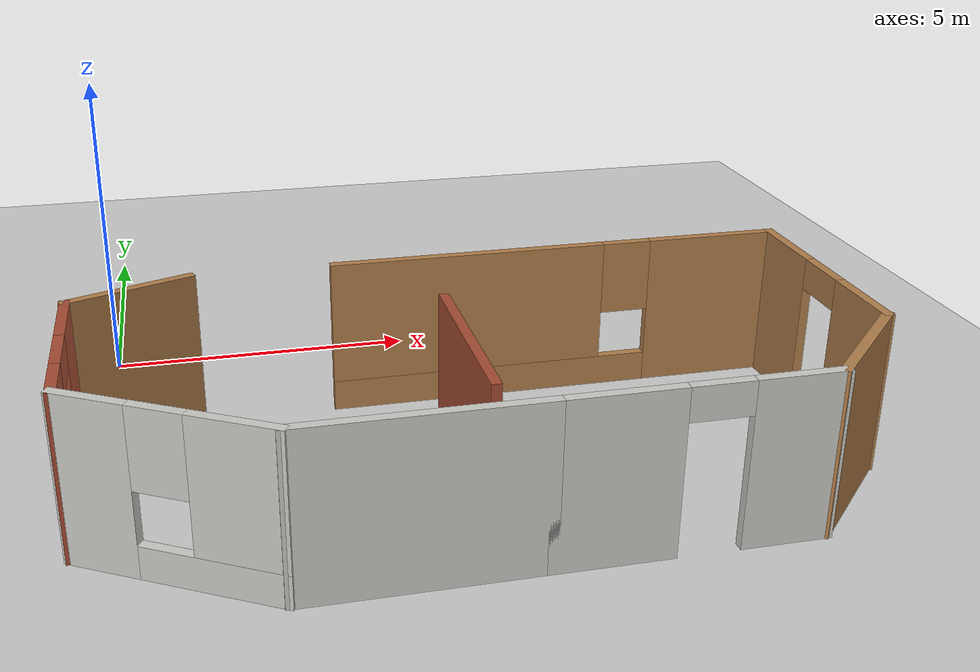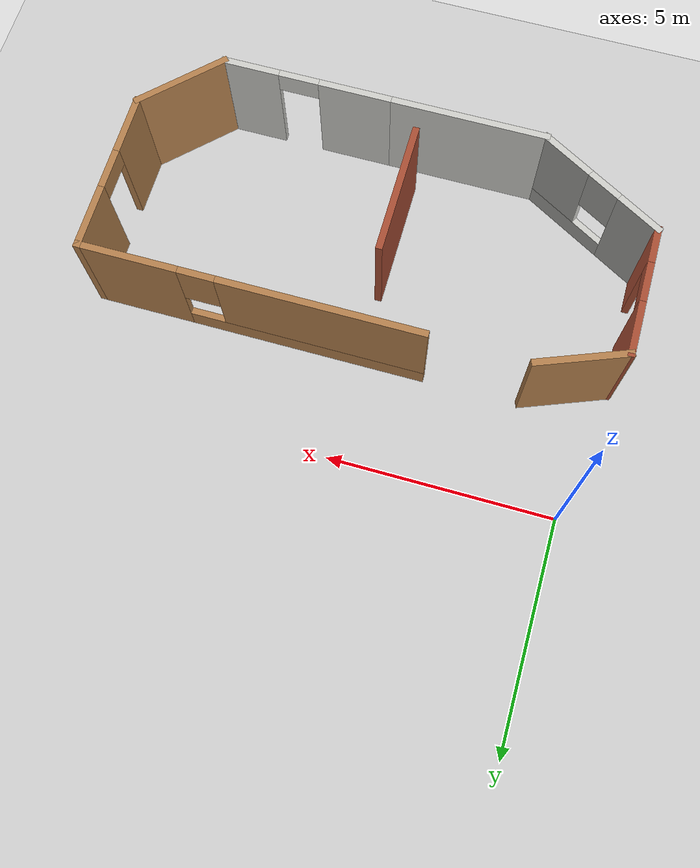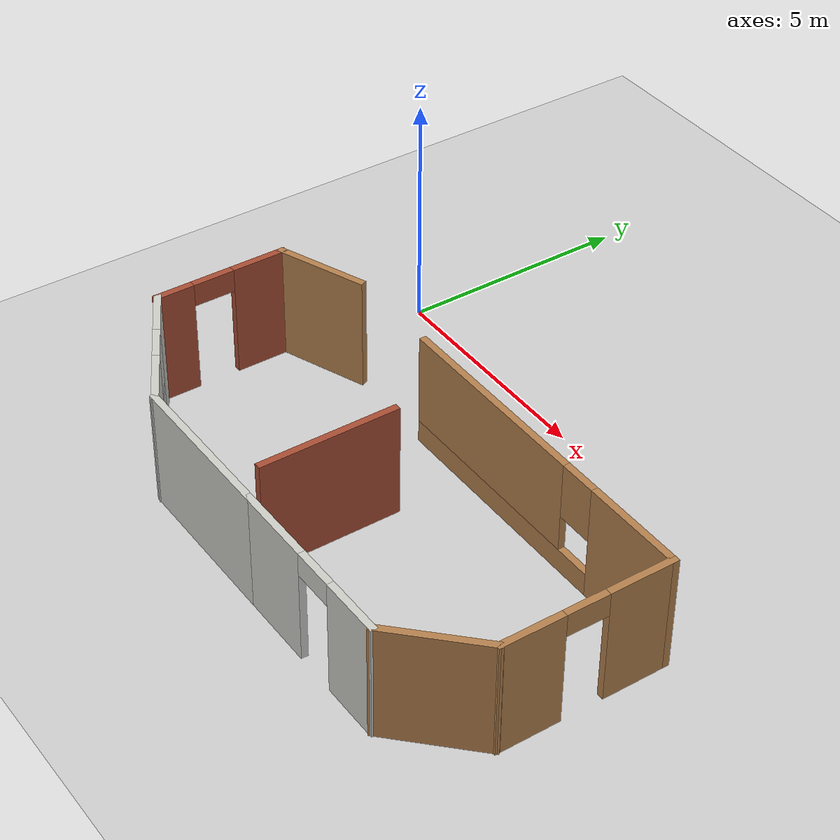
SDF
<sdf version="1.7">
 <world name="default">
  <light name="sun" type="directional">
   <pose>0 0 10 0 -0 0</pose>
   <diffuse>0.8 0.8 0.8 1</diffuse>
   <specular>0.2 0.2 0.2 1</specular>
   <attenuation>
    <range>1000</range>
    <constant>0.9</constant>
    <linear>0.01</linear>
    <quadratic>0.001</quadratic>
   </attenuation>
   <direction>-0.5 0.1 -0.9</direction>
   <spot><inner_angle>0</inner_angle><outer_angle>0</outer_angle><falloff>0</falloff></spot>
  </light>
  <model name="ground_plane">
   <static>1</static>
   <link name="link">
    <collision name="collision">
     <geometry><plane><normal>0 0 1</normal><size>100 100</size></plane></geometry>
     <surface><friction><ode><mu>100</mu><mu2>50</mu2></ode></friction></surface>
    </collision>
    <visual name="visual">
     <cast_shadows>0</cast_shadows>
     <geometry><plane><normal>0 0 1</normal><size>100 100</size></plane></geometry>
     <material>
      <script><uri>file://media/materials/scripts/gazebo.material</uri><name>Gazebo/Grey</name></script>
     </material>
    </visual>
   </link>
  </model>
  <gravity>0 0 -9.8</gravity>
  <magnetic_field>6e-06 2.3e-05 -4.2e-05</magnetic_field>
  <atmosphere type="adiabatic"/>
  <physics type="ode">
   <max_step_size>0.001</max_step_size>
   <real_time_factor>1</real_time_factor>
   <real_time_update_rate>1000</real_time_update_rate>
  </physics>
  <scene><ambient>0.4 0.4 0.4 1</ambient><background>0.7 0.7 0.7 1</background><shadows>1</shadows></scene>
  <audio><device>default</device></audio>
  <spherical_coordinates>
   <surface_model>EARTH_WGS84</surface_model>
   <latitude_deg>0</latitude_deg>
   <longitude_deg>0</longitude_deg>
   <elevation>0</elevation>
   <heading_deg>0</heading_deg>
  </spherical_coordinates>
  <model name="mymodel">
   <pose>5.20661 -3.75303 0 0 -0 0</pose>
   <link name="Wall_0">
    <pose>-5.68661 -0.671967 0 0 -0 -1.5708</pose>
    <visual name="Wall_0_Visual_0">
     <pose>-0.8775 0 1.25 0 -0 0</pose>
     <geometry><box><size>1.245 0.15 2.5</size></box></geometry>
     <material>
      <script><uri>file://media/materials/scripts/gazebo.material</uri><name>Gazebo/Bricks</name></script>
      <ambient>1 1 1 1</ambient>
     </material>
     <meta><layer>0</layer></meta>
    </visual>
    <collision name="Wall_0_Collision_0">
     <geometry><box><size>1.245 0.15 2.5</size></box></geometry>
     <pose>-0.8775 0 1.25 0 -0 0</pose>
    </collision>
    <visual name="Wall_0_Visual_1">
     <pose>1.0725 0 1.25 0 -0 0</pose>
     <geometry><box><size>0.855 0.15 2.5</size></box></geometry>
     <material>
      <script><uri>file://media/materials/scripts/gazebo.material</uri><name>Gazebo/Bricks</name></script>
      <ambient>1 1 1 1</ambient>
     </material>
     <meta><layer>0</layer></meta>
    </visual>
    <collision name="Wall_0_Collision_1">
     <geometry><box><size>0.855 0.15 2.5</size></box></geometry>
     <pose>1.0725 0 1.25 0 -0 0</pose>
    </collision>
    <visual name="Wall_0_Visual_2">
     <pose>0.195 0 2.25 0 -0 0</pose>
     <geometry><box><size>0.9 0.15 0.5</size></box></geometry>
     <material>
      <script><uri>file://media/materials/scripts/gazebo.material</uri><name>Gazebo/Bricks</name></script>
      <ambient>1 1 1 1</ambient>
     </material>
     <meta><layer>0</layer></meta>
    </visual>
    <collision name="Wall_0_Collision_2">
     <geometry><box><size>0.9 0.15 0.5</size></box></geometry>
     <pose>0.195 0 2.25 0 -0 0</pose>
    </collision>
   </link>
   <link name="Wall_11">
    <collision name="Wall_11_Collision">
     <geometry><box><size>2.072 0.15 2.5</size></box></geometry>
     <pose>0 0 1.25 0 -0 0</pose>
    </collision>
    <visual name="Wall_11_Visual">
     <pose>0 0 1.25 0 -0 0</pose>
     <geometry><box><size>2.072 0.15 2.5</size></box></geometry>
     <material>
      <script><uri>file://media/materials/scripts/gazebo.material</uri><name>Gazebo/Wood</name></script>
      <ambient>1 1 1 1</ambient>
     </material>
     <meta><layer>0</layer></meta>
    </visual>
    <pose>-4.79161 1.10303 0 0 -0 -2.76882</pose>
   </link>
   <link name="Wall_2">
    <pose>-4.34427 -2.87197 0 0 -0 -0.523599</pose>
    <visual name="Wall_2_Visual_0">
     <pose>-1.06082 0 1.25 0 -0 0</pose>
     <geometry><box><size>1.12835 0.15 2.5</size></box></geometry>
     <material>
      <script><uri>file://media/materials/scripts/gazebo.material</uri><name>Gazebo/CeilingTiled</name></script>
      <ambient>1 0.764706 0.305882 1</ambient>
     </material>
     <meta><layer>0</layer></meta>
    </visual>
    <collision name="Wall_2_Collision_0">
     <geometry><box><size>1.12835 0.15 2.5</size></box></geometry>
     <pose>-1.06082 0 1.25 0 -0 0</pose>
    </collision>
    <visual name="Wall_2_Visual_1">
     <pose>0.564177 0 0.25 0 -0 0</pose>
     <geometry><box><size>2.12165 0.15 0.5</size></box></geometry>
     <material>
      <script><uri>file://media/materials/scripts/gazebo.material</uri><name>Gazebo/CeilingTiled</name></script>
      <ambient>1 0.764706 0.305882 1</ambient>
     </material>
     <meta><layer>0</layer></meta>
    </visual>
    <collision name="Wall_2_Collision_1">
     <geometry><box><size>2.12165 0.15 0.5</size></box></geometry>
     <pose>0.564177 0 0.25 0 -0 0</pose>
    </collision>
    <visual name="Wall_2_Visual_2">
     <pose>0.964177 0 1.5 0 -0 0</pose>
     <geometry><box><size>1.32164 0.15 2</size></box></geometry>
     <material>
      <script><uri>file://media/materials/scripts/gazebo.material</uri><name>Gazebo/CeilingTiled</name></script>
      <ambient>1 0.764706 0.305882 1</ambient>
     </material>
     <meta><layer>0</layer></meta>
    </visual>
    <collision name="Wall_2_Collision_2">
     <geometry><box><size>1.32164 0.15 2</size></box></geometry>
     <pose>0.964177 0 1.5 0 -0 0</pose>
    </collision>
    <visual name="Wall_2_Visual_3">
     <pose>-0.096645 0 1.9 0 -0 0</pose>
     <geometry><box><size>0.8 0.15 1.2</size></box></geometry>
     <material>
      <script><uri>file://media/materials/scripts/gazebo.material</uri><name>Gazebo/CeilingTiled</name></script>
      <ambient>1 0.764706 0.305882 1</ambient>
     </material>
     <meta><layer>0</layer></meta>
    </visual>
    <collision name="Wall_2_Collision_3">
     <geometry><box><size>0.8 0.15 1.2</size></box></geometry>
     <pose>-0.096645 0 1.9 0 -0 0</pose>
    </collision>
   </link>
   <link name="Wall_3">
    <collision name="Wall_3_Collision">
     <geometry><box><size>3.5 0.15 2.5</size></box></geometry>
     <pose>0 0 1.25 0 -0 0</pose>
    </collision>
    <visual name="Wall_3_Visual">
     <pose>0 0 1.25 0 -0 0</pose>
     <geometry><box><size>3.5 0.15 2.5</size></box></geometry>
     <material>
      <script><uri>file://media/materials/scripts/gazebo.material</uri><name>Gazebo/CeilingTiled</name></script>
      <ambient>1 0.764706 0.305882 1</ambient>
     </material>
     <meta><layer>0</layer></meta>
    </visual>
    <pose>-1.32693 -3.64697 0 0 -0 0</pose>
   </link>
   <link name="Wall_4">
    <pose>2.27307 -3.64697 0 0 -0 0</pose>
    <visual name="Wall_4_Visual_0">
     <pose>-1.11253 0 1.25 0 -0 0</pose>
     <geometry><box><size>1.77495 0.15 2.5</size></box></geometry>
     <material>
      <script><uri>file://media/materials/scripts/gazebo.material</uri><name>Gazebo/CeilingTiled</name></script>
      <ambient>1 0.764706 0.305882 1</ambient>
     </material>
     <meta><layer>0</layer></meta>
    </visual>
    <collision name="Wall_4_Collision_0">
     <geometry><box><size>1.77495 0.15 2.5</size></box></geometry>
     <pose>-1.11253 0 1.25 0 -0 0</pose>
    </collision>
    <visual name="Wall_4_Visual_1">
     <pose>1.33747 0 1.25 0 -0 0</pose>
     <geometry><box><size>1.32505 0.15 2.5</size></box></geometry>
     <material>
      <script><uri>file://media/materials/scripts/gazebo.material</uri><name>Gazebo/CeilingTiled</name></script>
      <ambient>1 0.764706 0.305882 1</ambient>
     </material>
     <meta><layer>0</layer></meta>
    </visual>
    <collision name="Wall_4_Collision_1">
     <geometry><box><size>1.32505 0.15 2.5</size></box></geometry>
     <pose>1.33747 0 1.25 0 -0 0</pose>
    </collision>
    <visual name="Wall_4_Visual_2">
     <pose>0.224946 0 2.25 0 -0 0</pose>
     <geometry><box><size>0.9 0.15 0.5</size></box></geometry>
     <material>
      <script><uri>file://media/materials/scripts/gazebo.material</uri><name>Gazebo/CeilingTiled</name></script>
      <ambient>1 0.764706 0.305882 1</ambient>
     </material>
     <meta><layer>0</layer></meta>
    </visual>
    <collision name="Wall_4_Collision_2">
     <geometry><box><size>0.9 0.15 0.5</size></box></geometry>
     <pose>0.224946 0 2.25 0 -0 0</pose>
    </collision>
   </link>
   <link name="Wall_5">
    <collision name="Wall_5_Collision">
     <geometry><box><size>2.25 0.15 2.5</size></box></geometry>
     <pose>0 0 1.25 0 -0 0</pose>
    </collision>
    <visual name="Wall_5_Visual">
     <pose>0 0 1.25 0 -0 0</pose>
     <geometry><box><size>2.25 0.15 2.5</size></box></geometry>
     <material>
      <script><uri>file://media/materials/scripts/gazebo.material</uri><name>Gazebo/Wood</name></script>
      <ambient>1 1 1 1</ambient>
     </material>
     <meta><layer>0</layer></meta>
    </visual>
    <pose>4.94053 -2.9045 0 0 -0 0.785398</pose>
   </link>
   <link name="Wall_6">
    <pose>5.68299 -0.362042 0 0 -0 1.5708</pose>
    <visual name="Wall_6_Visual_0">
     <pose>-1.18354 0 1.25 0 -0 0</pose>
     <geometry><box><size>1.38293 0.15 2.5</size></box></geometry>
     <material>
      <script><uri>file://media/materials/scripts/gazebo.material</uri><name>Gazebo/Wood</name></script>
      <ambient>1 1 1 1</ambient>
     </material>
     <meta><layer>0</layer></meta>
    </visual>
    <collision name="Wall_6_Collision_0">
     <geometry><box><size>1.38293 0.15 2.5</size></box></geometry>
     <pose>-1.18354 0 1.25 0 -0 0</pose>
    </collision>
    <visual name="Wall_6_Visual_1">
     <pose>1.14146 0 1.25 0 -0 0</pose>
     <geometry><box><size>1.46707 0.15 2.5</size></box></geometry>
     <material>
      <script><uri>file://media/materials/scripts/gazebo.material</uri><name>Gazebo/Wood</name></script>
      <ambient>1 1 1 1</ambient>
     </material>
     <meta><layer>0</layer></meta>
    </visual>
    <collision name="Wall_6_Collision_1">
     <geometry><box><size>1.46707 0.15 2.5</size></box></geometry>
     <pose>1.14146 0 1.25 0 -0 0</pose>
    </collision>
    <visual name="Wall_6_Visual_2">
     <pose>-0.042074 0 2.25 0 -0 0</pose>
     <geometry><box><size>0.9 0.15 0.5</size></box></geometry>
     <material>
      <script><uri>file://media/materials/scripts/gazebo.material</uri><name>Gazebo/Wood</name></script>
      <ambient>1 1 1 1</ambient>
     </material>
     <meta><layer>0</layer></meta>
    </visual>
    <collision name="Wall_6_Collision_2">
     <geometry><box><size>0.9 0.15 0.5</size></box></geometry>
     <pose>-0.042074 0 2.25 0 -0 0</pose>
    </collision>
   </link>
   <link name="Wall_7">
    <pose>2.008 1.43796 0 0 -0 3.14159</pose>
    <visual name="Wall_7_Visual_0">
     <pose>-2.63741 0 1.25 0 -0 0</pose>
     <geometry><box><size>2.22518 0.15 2.5</size></box></geometry>
     <material>
      <script><uri>file://media/materials/scripts/gazebo.material</uri><name>Gazebo/Wood</name></script>
      <ambient>1 1 1 1</ambient>
     </material>
     <meta><layer>0</layer></meta>
    </visual>
    <collision name="Wall_7_Collision_0">
     <geometry><box><size>2.22518 0.15 2.5</size></box></geometry>
     <pose>-2.63741 0 1.25 0 -0 0</pose>
    </collision>
    <visual name="Wall_7_Visual_1">
     <pose>1.11259 0 0.25 0 -0 0</pose>
     <geometry><box><size>5.27482 0.15 0.5</size></box></geometry>
     <material>
      <script><uri>file://media/materials/scripts/gazebo.material</uri><name>Gazebo/Wood</name></script>
      <ambient>1 1 1 1</ambient>
     </material>
     <meta><layer>0</layer></meta>
    </visual>
    <collision name="Wall_7_Collision_1">
     <geometry><box><size>5.27482 0.15 0.5</size></box></geometry>
     <pose>1.11259 0 0.25 0 -0 0</pose>
    </collision>
    <visual name="Wall_7_Visual_2">
     <pose>1.51259 0 1.5 0 -0 0</pose>
     <geometry><box><size>4.47482 0.15 2</size></box></geometry>
     <material>
      <script><uri>file://media/materials/scripts/gazebo.material</uri><name>Gazebo/Wood</name></script>
      <ambient>1 1 1 1</ambient>
     </material>
     <meta><layer>0</layer></meta>
    </visual>
    <collision name="Wall_7_Collision_2">
     <geometry><box><size>4.47482 0.15 2</size></box></geometry>
     <pose>1.51259 0 1.5 0 -0 0</pose>
    </collision>
    <visual name="Wall_7_Visual_3">
     <pose>-1.12482 0 1.9 0 -0 0</pose>
     <geometry><box><size>0.8 0.15 1.2</size></box></geometry>
     <material>
      <script><uri>file://media/materials/scripts/gazebo.material</uri><name>Gazebo/Wood</name></script>
      <ambient>1 1 1 1</ambient>
     </material>
     <meta><layer>0</layer></meta>
    </visual>
    <collision name="Wall_7_Collision_3">
     <geometry><box><size>0.8 0.15 1.2</size></box></geometry>
     <pose>-1.12482 0 1.9 0 -0 0</pose>
    </collision>
   </link>
   <link name="Wall_9">
    <collision name="Wall_9_Collision">
     <geometry><box><size>3 0.15 2.5</size></box></geometry>
     <pose>0 0 1.25 0 -0 0</pose>
    </collision>
    <visual name="Wall_9_Visual">
     <pose>0 0 1.25 0 -0 0</pose>
     <geometry><box><size>3 0.15 2.5</size></box></geometry>
     <material>
      <script><uri>file://media/materials/scripts/gazebo.material</uri><name>Gazebo/Bricks</name></script>
      <ambient>1 1 1 1</ambient>
     </material>
     <meta><layer>0</layer></meta>
    </visual>
    <pose>-0.276608 -1.61197 0 0 -0 -1.5708</pose>
   </link>
   <static>1</static>
  </model>
 </world>
</sdf>
